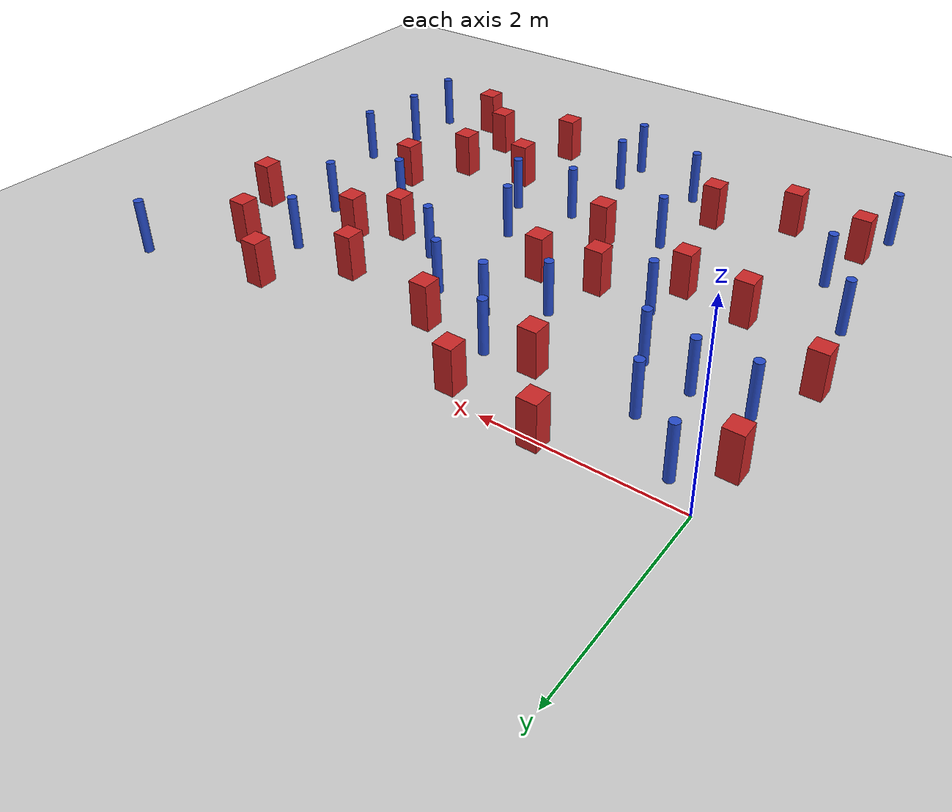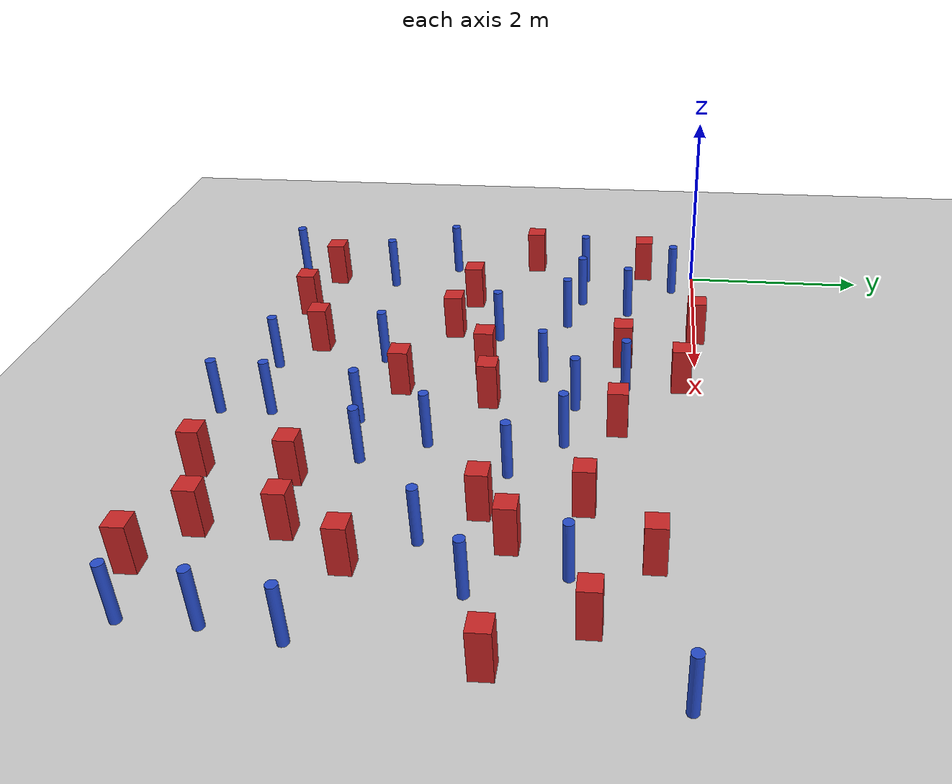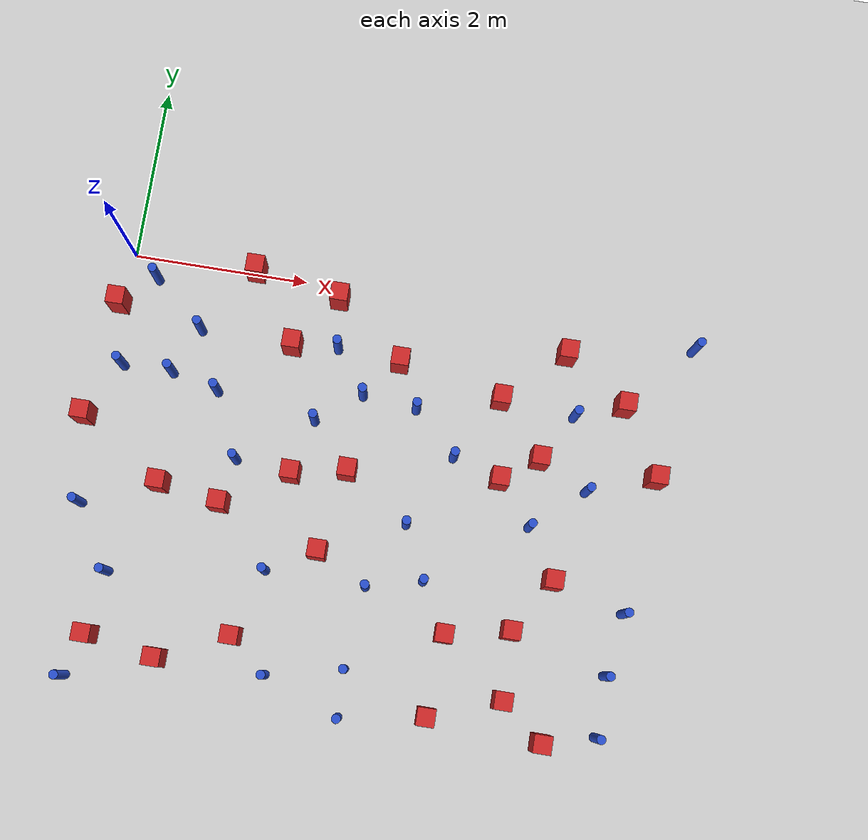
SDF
<sdf version="1.6">
 <world name="default">
  <model name="ground_plane">
   <static>1</static>
   <link name="link">
    <collision name="collision">
     <geometry><plane><normal>0 0 1</normal><size>100 100</size></plane></geometry>
     <surface><friction><ode><mu>100</mu><mu2>50</mu2></ode></friction></surface>
    </collision>
    <visual name="visual">
     <cast_shadows>0</cast_shadows>
     <geometry><plane><normal>0 0 1</normal><size>100 100</size></plane></geometry>
     <material>
      <ambient>1.0 1.0 1.0 1.0</ambient>
      <diffuse>0.8 0.8 0.8 1.0</diffuse>
      <specular>0.01 0.01 0.01 1.000000</specular>
     </material>
    </visual>
   </link>
  </model>
  <model name="NamedLocations">
   <static>true</static>
   <link name="DefaultStart"><pose>8.5 0 0 0 0 3.14</pose></link>
  </model>
  <model name="square_post_obstacle1">
   <static>true</static>
   <pose>5.06499883249 -0.397091042828 1.91545236811e-07 -7.35059704564e-06 1.12565212e-07 2.39332434364e-05</pose>
   <link name="link">
    <pose>0 0 0.25 0 -0 0</pose>
    <inertial>
     <mass>100</mass>
     <inertia>
      <ixx>0.166667</ixx>
      <ixy>0</ixy>
      <ixz>0</ixz>
      <iyy>0.166667</iyy>
      <iyz>0</iyz>
      <izz>0.166667</izz>
     </inertia>
    </inertial>
    <collision name="collision"><geometry><box><size>.2 .2 .5</size></box></geometry></collision>
    <visual name="visual">
     <geometry><box><size>.2 .2 .5</size></box></geometry>
     <material>
      <script><name>Gazebo/Red</name><uri>file://media/materials/scripts/gazebo.material</uri></script>
     </material>
    </visual>
   </link>
  </model>
  <model name="pole_obstacle6">
   <static>true</static>
   <pose>1.57511094073 -2.17022397496 7.38925637345e-09 -8.47170692799e-08 1.24976765053e-08 -1.74513093017e-07</pose>
   <link name="link">
    <pose>0 0 0.3 0 -0 0</pose>
    <inertial>
     <mass>1</mass>
     <inertia><ixx>0.145833</ixx><ixy>0</ixy><ixz>0</ixz><iyy>0.145833</iyy><iyz>0</iyz><izz>0.125</izz></inertia>
    </inertial>
    <collision name="collision">
     <geometry><cylinder><radius>0.05</radius><length>.6</length></cylinder></geometry>
    </collision>
    <visual name="visual">
     <geometry><cylinder><radius>0.05</radius><length>.6</length></cylinder></geometry>
     <material>
      <script><name>Gazebo/Blue</name><uri>file://media/materials/scripts/gazebo.material</uri></script>
     </material>
    </visual>
   </link>
  </model>
  <model name="square_post_obstacle10">
   <static>true</static>
   <pose>0.782432085454 -2.56080963063 1.91545236811e-07 -7.35059704564e-06 1.12565212e-07 2.39332434364e-05</pose>
   <link name="link">
    <pose>0 0 0.25 0 -0 0</pose>
    <inertial>
     <mass>100</mass>
     <inertia>
      <ixx>0.166667</ixx>
      <ixy>0</ixy>
      <ixz>0</ixz>
      <iyy>0.166667</iyy>
      <iyz>0</iyz>
      <izz>0.166667</izz>
     </inertia>
    </inertial>
    <collision name="collision"><geometry><box><size>.2 .2 .5</size></box></geometry></collision>
    <visual name="visual">
     <geometry><box><size>.2 .2 .5</size></box></geometry>
     <material>
      <script><name>Gazebo/Red</name><uri>file://media/materials/scripts/gazebo.material</uri></script>
     </material>
    </visual>
   </link>
  </model>
  <model name="square_post_obstacle12">
   <static>true</static>
   <pose>2.42420450844 -0.160747507718 1.91545236811e-07 -7.35059704564e-06 1.12565212e-07 2.39332434364e-05</pose>
   <link name="link">
    <pose>0 0 0.25 0 -0 0</pose>
    <inertial>
     <mass>100</mass>
     <inertia>
      <ixx>0.166667</ixx>
      <ixy>0</ixy>
      <ixz>0</ixz>
      <iyy>0.166667</iyy>
      <iyz>0</iyz>
      <izz>0.166667</izz>
     </inertia>
    </inertial>
    <collision name="collision"><geometry><box><size>.2 .2 .5</size></box></geometry></collision>
    <visual name="visual">
     <geometry><box><size>.2 .2 .5</size></box></geometry>
     <material>
      <script><name>Gazebo/Red</name><uri>file://media/materials/scripts/gazebo.material</uri></script>
     </material>
    </visual>
   </link>
  </model>
  <model name="square_post_obstacle19">
   <static>true</static>
   <pose>4.10246353803 -4.61326144353 1.91545236811e-07 -7.35059704564e-06 1.12565212e-07 2.39332434364e-05</pose>
   <link name="link">
    <pose>0 0 0.25 0 -0 0</pose>
    <inertial>
     <mass>100</mass>
     <inertia>
      <ixx>0.166667</ixx>
      <ixy>0</ixy>
      <ixz>0</ixz>
      <iyy>0.166667</iyy>
      <iyz>0</iyz>
      <izz>0.166667</izz>
     </inertia>
    </inertial>
    <collision name="collision"><geometry><box><size>.2 .2 .5</size></box></geometry></collision>
    <visual name="visual">
     <geometry><box><size>.2 .2 .5</size></box></geometry>
     <material>
      <script><name>Gazebo/Red</name><uri>file://media/materials/scripts/gazebo.material</uri></script>
     </material>
    </visual>
   </link>
  </model>
  <model name="pole_obstacle14">
   <static>true</static>
   <pose>0.135642803884 -4.80305196659 7.38925637345e-09 -8.471706928e-08 1.24976765036e-08 -1.74513093019e-07</pose>
   <link name="link">
    <pose>0 0 0.3 0 -0 0</pose>
    <inertial>
     <mass>1</mass>
     <inertia><ixx>0.145833</ixx><ixy>0</ixy><ixz>0</ixz><iyy>0.145833</iyy><iyz>0</iyz><izz>0.125</izz></inertia>
    </inertial>
    <collision name="collision">
     <geometry><cylinder><radius>0.05</radius><length>.6</length></cylinder></geometry>
    </collision>
    <visual name="visual">
     <geometry><cylinder><radius>0.05</radius><length>.6</length></cylinder></geometry>
     <material>
      <script><name>Gazebo/Blue</name><uri>file://media/materials/scripts/gazebo.material</uri></script>
     </material>
    </visual>
   </link>
  </model>
  <model name="square_post_obstacle25">
   <static>true</static>
   <pose>2.83110166358 -2.10136878462 1.91545236811e-07 -7.35059704564e-06 1.12565212e-07 2.39332434364e-05</pose>
   <link name="link">
    <pose>0 0 0.25 0 -0 0</pose>
    <inertial>
     <mass>100</mass>
     <inertia>
      <ixx>0.166667</ixx>
      <ixy>0</ixy>
      <ixz>0</ixz>
      <iyy>0.166667</iyy>
      <iyz>0</iyz>
      <izz>0.166667</izz>
     </inertia>
    </inertial>
    <collision name="collision"><geometry><box><size>.2 .2 .5</size></box></geometry></collision>
    <visual name="visual">
     <geometry><box><size>.2 .2 .5</size></box></geometry>
     <material>
      <script><name>Gazebo/Red</name><uri>file://media/materials/scripts/gazebo.material</uri></script>
     </material>
    </visual>
   </link>
  </model>
  <model name="pole_obstacle19">
   <static>true</static>
   <pose>3.15236117292 -4.25634564134 7.38925637345e-09 -8.47170692798e-08 1.24976765033e-08 -1.74513093019e-07</pose>
   <link name="link">
    <pose>0 0 0.3 0 -0 0</pose>
    <inertial>
     <mass>1</mass>
     <inertia><ixx>0.145833</ixx><ixy>0</ixy><ixz>0</ixz><iyy>0.145833</iyy><iyz>0</iyz><izz>0.125</izz></inertia>
    </inertial>
    <collision name="collision">
     <geometry><cylinder><radius>0.05</radius><length>.6</length></cylinder></geometry>
    </collision>
    <visual name="visual">
     <geometry><cylinder><radius>0.05</radius><length>.6</length></cylinder></geometry>
     <material>
      <script><name>Gazebo/Blue</name><uri>file://media/materials/scripts/gazebo.material</uri></script>
     </material>
    </visual>
   </link>
  </model>
  <model name="pole_obstacle26">
   <static>true</static>
   <pose>3.23451376099 -3.33873921395 7.38925637345e-09 -8.47170692798e-08 1.24976764939e-08 -1.74513093025e-07</pose>
   <link name="link">
    <pose>0 0 0.3 0 -0 0</pose>
    <inertial>
     <mass>1</mass>
     <inertia><ixx>0.145833</ixx><ixy>0</ixy><ixz>0</ixz><iyy>0.145833</iyy><iyz>0</iyz><izz>0.125</izz></inertia>
    </inertial>
    <collision name="collision">
     <geometry><cylinder><radius>0.05</radius><length>.6</length></cylinder></geometry>
    </collision>
    <visual name="visual">
     <geometry><cylinder><radius>0.05</radius><length>.6</length></cylinder></geometry>
     <material>
      <script><name>Gazebo/Blue</name><uri>file://media/materials/scripts/gazebo.material</uri></script>
     </material>
    </visual>
   </link>
  </model>
  <model name="pole_obstacle30">
   <static>true</static>
   <pose>0.388549299928 -3.6211798967 7.38925637345e-09 -8.471706928e-08 1.24976765084e-08 -1.74513093017e-07</pose>
   <link name="link">
    <pose>0 0 0.3 0 -0 0</pose>
    <inertial>
     <mass>1</mass>
     <inertia><ixx>0.145833</ixx><ixy>0</ixy><ixz>0</ixz><iyy>0.145833</iyy><iyz>0</iyz><izz>0.125</izz></inertia>
    </inertial>
    <collision name="collision">
     <geometry><cylinder><radius>0.05</radius><length>.6</length></cylinder></geometry>
    </collision>
    <visual name="visual">
     <geometry><cylinder><radius>0.05</radius><length>.6</length></cylinder></geometry>
     <material>
      <script><name>Gazebo/Blue</name><uri>file://media/materials/scripts/gazebo.material</uri></script>
     </material>
    </visual>
   </link>
  </model>
  <model name="pole_obstacle35">
   <static>true</static>
   <pose>5.24828819701 -1.08990193355 7.38925637345e-09 -8.471706928e-08 1.24976765134e-08 -1.74513093015e-07</pose>
   <link name="link">
    <pose>0 0 0.3 0 -0 0</pose>
    <inertial>
     <mass>1</mass>
     <inertia><ixx>0.145833</ixx><ixy>0</ixy><ixz>0</ixz><iyy>0.145833</iyy><iyz>0</iyz><izz>0.125</izz></inertia>
    </inertial>
    <collision name="collision">
     <geometry><cylinder><radius>0.05</radius><length>.6</length></cylinder></geometry>
    </collision>
    <visual name="visual">
     <geometry><cylinder><radius>0.05</radius><length>.6</length></cylinder></geometry>
     <material>
      <script><name>Gazebo/Blue</name><uri>file://media/materials/scripts/gazebo.material</uri></script>
     </material>
    </visual>
   </link>
  </model>
  <model name="square_post_obstacle37">
   <static>true</static>
   <pose>0.308053330248 -4.32436632156 1.91545236811e-07 -7.35059704564e-06 1.12565212e-07 2.39332434364e-05</pose>
   <link name="link">
    <pose>0 0 0.25 0 -0 0</pose>
    <inertial>
     <mass>100</mass>
     <inertia>
      <ixx>0.166667</ixx>
      <ixy>0</ixy>
      <ixz>0</ixz>
      <iyy>0.166667</iyy>
      <iyz>0</iyz>
      <izz>0.166667</izz>
     </inertia>
    </inertial>
    <collision name="collision"><geometry><box><size>.2 .2 .5</size></box></geometry></collision>
    <visual name="visual">
     <geometry><box><size>.2 .2 .5</size></box></geometry>
     <material>
      <script><name>Gazebo/Red</name><uri>file://media/materials/scripts/gazebo.material</uri></script>
     </material>
    </visual>
   </link>
  </model>
  <model name="pole_obstacle39">
   <static>true</static>
   <pose>0.322732929197 -0.2510917029 7.38925637345e-09 -8.47170692799e-08 1.2497676499e-08 -1.74513093021e-07</pose>
   <link name="link">
    <pose>0 0 0.3 0 -0 0</pose>
    <inertial>
     <mass>1</mass>
     <inertia><ixx>0.145833</ixx><ixy>0</ixy><ixz>0</ixz><iyy>0.145833</iyy><iyz>0</iyz><izz>0.125</izz></inertia>
    </inertial>
    <collision name="collision">
     <geometry><cylinder><radius>0.05</radius><length>.6</length></cylinder></geometry>
    </collision>
    <visual name="visual">
     <geometry><cylinder><radius>0.05</radius><length>.6</length></cylinder></geometry>
     <material>
      <script><name>Gazebo/Blue</name><uri>file://media/materials/scripts/gazebo.material</uri></script>
     </material>
    </visual>
   </link>
  </model>
  <model name="pole_obstacle45">
   <static>true</static>
   <pose>5.95099142099 -4.54348195831 7.38925637345e-09 -8.47170692796e-08 1.24976764786e-08 -1.74513093032e-07</pose>
   <link name="link">
    <pose>0 0 0.3 0 -0 0</pose>
    <inertial>
     <mass>1</mass>
     <inertia><ixx>0.145833</ixx><ixy>0</ixy><ixz>0</ixz><iyy>0.145833</iyy><iyz>0</iyz><izz>0.125</izz></inertia>
    </inertial>
    <collision name="collision">
     <geometry><cylinder><radius>0.05</radius><length>.6</length></cylinder></geometry>
    </collision>
    <visual name="visual">
     <geometry><cylinder><radius>0.05</radius><length>.6</length></cylinder></geometry>
     <material>
      <script><name>Gazebo/Blue</name><uri>file://media/materials/scripts/gazebo.material</uri></script>
     </material>
    </visual>
   </link>
  </model>
  <model name="square_post_obstacle55">
   <static>true</static>
   <pose>5.36479762426 -4.69391803515 1.91545236811e-07 -7.35059704564e-06 1.12565212e-07 2.39332434364e-05</pose>
   <link name="link">
    <pose>0 0 0.25 0 -0 0</pose>
    <inertial>
     <mass>100</mass>
     <inertia>
      <ixx>0.166667</ixx>
      <ixy>0</ixy>
      <ixz>0</ixz>
      <iyy>0.166667</iyy>
      <iyz>0</iyz>
      <izz>0.166667</izz>
     </inertia>
    </inertial>
    <collision name="collision"><geometry><box><size>.2 .2 .5</size></box></geometry></collision>
    <visual name="visual">
     <geometry><box><size>.2 .2 .5</size></box></geometry>
     <material>
      <script><name>Gazebo/Red</name><uri>file://media/materials/scripts/gazebo.material</uri></script>
     </material>
    </visual>
   </link>
  </model>
  <model name="square_post_obstacle56">
   <static>true</static>
   <pose>3.2185535475 -0.783144345055 1.91545236811e-07 -7.35059704564e-06 1.12565212e-07 2.39332434364e-05</pose>
   <link name="link">
    <pose>0 0 0.25 0 -0 0</pose>
    <inertial>
     <mass>100</mass>
     <inertia>
      <ixx>0.166667</ixx>
      <ixy>0</ixy>
      <ixz>0</ixz>
      <iyy>0.166667</iyy>
      <iyz>0</iyz>
      <izz>0.166667</izz>
     </inertia>
    </inertial>
    <collision name="collision"><geometry><box><size>.2 .2 .5</size></box></geometry></collision>
    <visual name="visual">
     <geometry><box><size>.2 .2 .5</size></box></geometry>
     <material>
      <script><name>Gazebo/Red</name><uri>file://media/materials/scripts/gazebo.material</uri></script>
     </material>
    </visual>
   </link>
  </model>
  <model name="pole_obstacle56">
   <static>true</static>
   <pose>6.48297298913 -0.117563799914 7.38925637345e-09 -8.47170692799e-08 1.24976765077e-08 -1.74513093018e-07</pose>
   <link name="link">
    <pose>0 0 0.3 0 -0 0</pose>
    <inertial>
     <mass>1</mass>
     <inertia><ixx>0.145833</ixx><ixy>0</ixy><ixz>0</ixz><iyy>0.145833</iyy><iyz>0</iyz><izz>0.125</izz></inertia>
    </inertial>
    <collision name="collision">
     <geometry><cylinder><radius>0.05</radius><length>.6</length></cylinder></geometry>
    </collision>
    <visual name="visual">
     <geometry><cylinder><radius>0.05</radius><length>.6</length></cylinder></geometry>
     <material>
      <script><name>Gazebo/Blue</name><uri>file://media/materials/scripts/gazebo.material</uri></script>
     </material>
    </visual>
   </link>
  </model>
  <model name="pole_obstacle60">
   <static>true</static>
   <pose>2.30198096746 -4.45574456037 7.38925637345e-09 -8.47170692798e-08 1.24976765033e-08 -1.74513093019e-07</pose>
   <link name="link">
    <pose>0 0 0.3 0 -0 0</pose>
    <inertial>
     <mass>1</mass>
     <inertia><ixx>0.145833</ixx><ixy>0</ixy><ixz>0</ixz><iyy>0.145833</iyy><iyz>0</iyz><izz>0.125</izz></inertia>
    </inertial>
    <collision name="collision">
     <geometry><cylinder><radius>0.05</radius><length>.6</length></cylinder></geometry>
    </collision>
    <visual name="visual">
     <geometry><cylinder><radius>0.05</radius><length>.6</length></cylinder></geometry>
     <material>
      <script><name>Gazebo/Blue</name><uri>file://media/materials/scripts/gazebo.material</uri></script>
     </material>
    </visual>
   </link>
  </model>
  <model name="square_post_obstacle62">
   <static>true</static>
   <pose>6.23058611117 -1.64031552115 1.91545236811e-07 -7.35059704564e-06 1.12565212e-07 2.39332434364e-05</pose>
   <link name="link">
    <pose>0 0 0.25 0 -0 0</pose>
    <inertial>
     <mass>100</mass>
     <inertia>
      <ixx>0.166667</ixx>
      <ixy>0</ixy>
      <ixz>0</ixz>
      <iyy>0.166667</iyy>
      <iyz>0</iyz>
      <izz>0.166667</izz>
     </inertia>
    </inertial>
    <collision name="collision"><geometry><box><size>.2 .2 .5</size></box></geometry></collision>
    <visual name="visual">
     <geometry><box><size>.2 .2 .5</size></box></geometry>
     <material>
      <script><name>Gazebo/Red</name><uri>file://media/materials/scripts/gazebo.material</uri></script>
     </material>
    </visual>
   </link>
  </model>
  <model name="square_post_obstacle63">
   <static>true</static>
   <pose>1.43129479547 0.0119407371674 1.91545236811e-07 -7.35059704564e-06 1.12565212e-07 2.39332434364e-05</pose>
   <link name="link">
    <pose>0 0 0.25 0 -0 0</pose>
    <inertial>
     <mass>100</mass>
     <inertia>
      <ixx>0.166667</ixx>
      <ixy>0</ixy>
      <ixz>0</ixz>
      <iyy>0.166667</iyy>
      <iyz>0</iyz>
      <izz>0.166667</izz>
     </inertia>
    </inertial>
    <collision name="collision"><geometry><box><size>.2 .2 .5</size></box></geometry></collision>
    <visual name="visual">
     <geometry><box><size>.2 .2 .5</size></box></geometry>
     <material>
      <script><name>Gazebo/Red</name><uri>file://media/materials/scripts/gazebo.material</uri></script>
     </material>
    </visual>
   </link>
  </model>
  <model name="pole_obstacle65">
   <static>true</static>
   <pose>2.49685173949 -0.731615934364 7.38925637345e-09 -8.471706928e-08 1.24976765177e-08 -1.74513093012e-07</pose>
   <link name="link">
    <pose>0 0 0.3 0 -0 0</pose>
    <inertial>
     <mass>1</mass>
     <inertia><ixx>0.145833</ixx><ixy>0</ixy><ixz>0</ixz><iyy>0.145833</iyy><iyz>0</iyz><izz>0.125</izz></inertia>
    </inertial>
    <collision name="collision">
     <geometry><cylinder><radius>0.05</radius><length>.6</length></cylinder></geometry>
    </collision>
    <visual name="visual">
     <geometry><cylinder><radius>0.05</radius><length>.6</length></cylinder></geometry>
     <material>
      <script><name>Gazebo/Blue</name><uri>file://media/materials/scripts/gazebo.material</uri></script>
     </material>
    </visual>
   </link>
  </model>
  <model name="pole_obstacle68">
   <static>true</static>
   <pose>5.96467774368 -3.87970843119 7.38925637345e-09 -8.47170692798e-08 1.24976764937e-08 -1.74513093023e-07</pose>
   <link name="link">
    <pose>0 0 0.3 0 -0 0</pose>
    <inertial>
     <mass>1</mass>
     <inertia><ixx>0.145833</ixx><ixy>0</ixy><ixz>0</ixz><iyy>0.145833</iyy><iyz>0</iyz><izz>0.125</izz></inertia>
    </inertial>
    <collision name="collision">
     <geometry><cylinder><radius>0.05</radius><length>.6</length></cylinder></geometry>
    </collision>
    <visual name="visual">
     <geometry><cylinder><radius>0.05</radius><length>.6</length></cylinder></geometry>
     <material>
      <script><name>Gazebo/Blue</name><uri>file://media/materials/scripts/gazebo.material</uri></script>
     </material>
    </visual>
   </link>
  </model>
  <model name="square_post_obstacle74">
   <static>true</static>
   <pose>4.89238275033 -4.31501567506 1.91545236811e-07 -7.35059704564e-06 1.12565212e-07 2.39332434364e-05</pose>
   <link name="link">
    <pose>0 0 0.25 0 -0 0</pose>
    <inertial>
     <mass>100</mass>
     <inertia>
      <ixx>0.166667</ixx>
      <ixy>0</ixy>
      <ixz>0</ixz>
      <iyy>0.166667</iyy>
      <iyz>0</iyz>
      <izz>0.166667</izz>
     </inertia>
    </inertial>
    <collision name="collision"><geometry><box><size>.2 .2 .5</size></box></geometry></collision>
    <visual name="visual">
     <geometry><box><size>.2 .2 .5</size></box></geometry>
     <material>
      <script><name>Gazebo/Red</name><uri>file://media/materials/scripts/gazebo.material</uri></script>
     </material>
    </visual>
   </link>
  </model>
  <model name="pole_obstacle72">
   <static>true</static>
   <pose>-0.0511479005586 -2.91883224678 7.38925637345e-09 -8.47170692793e-08 1.24976764354e-08 -1.74513093044e-07</pose>
   <link name="link">
    <pose>0 0 0.3 0 -0 0</pose>
    <inertial>
     <mass>1</mass>
     <inertia><ixx>0.145833</ixx><ixy>0</ixy><ixz>0</ixz><iyy>0.145833</iyy><iyz>0</iyz><izz>0.125</izz></inertia>
    </inertial>
    <collision name="collision">
     <geometry><cylinder><radius>0.05</radius><length>.6</length></cylinder></geometry>
    </collision>
    <visual name="visual">
     <geometry><cylinder><radius>0.05</radius><length>.6</length></cylinder></geometry>
     <material>
      <script><name>Gazebo/Blue</name><uri>file://media/materials/scripts/gazebo.material</uri></script>
     </material>
    </visual>
   </link>
  </model>
  <model name="square_post_obstacle79">
   <static>true</static>
   <pose>4.87877708315 -3.56018479804 1.91545236811e-07 -7.35059704564e-06 1.12565212e-07 2.39332434364e-05</pose>
   <link name="link">
    <pose>0 0 0.25 0 -0 0</pose>
    <inertial>
     <mass>100</mass>
     <inertia>
      <ixx>0.166667</ixx>
      <ixy>0</ixy>
      <ixz>0</ixz>
      <iyy>0.166667</iyy>
      <iyz>0</iyz>
      <izz>0.166667</izz>
     </inertia>
    </inertial>
    <collision name="collision"><geometry><box><size>.2 .2 .5</size></box></geometry></collision>
    <visual name="visual">
     <geometry><box><size>.2 .2 .5</size></box></geometry>
     <material>
      <script><name>Gazebo/Red</name><uri>file://media/materials/scripts/gazebo.material</uri></script>
     </material>
    </visual>
   </link>
  </model>
  <model name="pole_obstacle81">
   <static>true</static>
   <pose>3.57175657947 -2.58729782271 7.38925637345e-09 -8.47170692798e-08 1.24976764939e-08 -1.74513093025e-07</pose>
   <link name="link">
    <pose>0 0 0.3 0 -0 0</pose>
    <inertial>
     <mass>1</mass>
     <inertia><ixx>0.145833</ixx><ixy>0</ixy><ixz>0</ixz><iyy>0.145833</iyy><iyz>0</iyz><izz>0.125</izz></inertia>
    </inertial>
    <collision name="collision">
     <geometry><cylinder><radius>0.05</radius><length>.6</length></cylinder></geometry>
    </collision>
    <visual name="visual">
     <geometry><cylinder><radius>0.05</radius><length>.6</length></cylinder></geometry>
     <material>
      <script><name>Gazebo/Blue</name><uri>file://media/materials/scripts/gazebo.material</uri></script>
     </material>
    </visual>
   </link>
  </model>
  <model name="square_post_obstacle86">
   <static>true</static>
   <pose>4.51724110307 -1.93016672603 1.91545236811e-07 -7.35059704564e-06 1.12565212e-07 2.39332434364e-05</pose>
   <link name="link">
    <pose>0 0 0.25 0 -0 0</pose>
    <inertial>
     <mass>100</mass>
     <inertia>
      <ixx>0.166667</ixx>
      <ixy>0</ixy>
      <ixz>0</ixz>
      <iyy>0.166667</iyy>
      <iyz>0</iyz>
      <izz>0.166667</izz>
     </inertia>
    </inertial>
    <collision name="collision"><geometry><box><size>.2 .2 .5</size></box></geometry></collision>
    <visual name="visual">
     <geometry><box><size>.2 .2 .5</size></box></geometry>
     <material>
      <script><name>Gazebo/Red</name><uri>file://media/materials/scripts/gazebo.material</uri></script>
     </material>
    </visual>
   </link>
  </model>
  <model name="pole_obstacle98">
   <static>true</static>
   <pose>3.16553861963 -4.77803323919 7.38925637345e-09 -8.47170692798e-08 1.24976765033e-08 -1.74513093019e-07</pose>
   <link name="link">
    <pose>0 0 0.3 0 -0 0</pose>
    <inertial>
     <mass>1</mass>
     <inertia><ixx>0.145833</ixx><ixy>0</ixy><ixz>0</ixz><iyy>0.145833</iyy><iyz>0</iyz><izz>0.125</izz></inertia>
    </inertial>
    <collision name="collision">
     <geometry><cylinder><radius>0.05</radius><length>.6</length></cylinder></geometry>
    </collision>
    <visual name="visual">
     <geometry><cylinder><radius>0.05</radius><length>.6</length></cylinder></geometry>
     <material>
      <script><name>Gazebo/Blue</name><uri>file://media/materials/scripts/gazebo.material</uri></script>
     </material>
    </visual>
   </link>
  </model>
  <model name="pole_obstacle108">
   <static>true</static>
   <pose>2.3711609536 -1.59447381703 7.38925637345e-09 -8.471706928e-08 1.24976765152e-08 -1.74513093012e-07</pose>
   <link name="link">
    <pose>0 0 0.3 0 -0 0</pose>
    <inertial>
     <mass>1</mass>
     <inertia><ixx>0.145833</ixx><ixy>0</ixy><ixz>0</ixz><iyy>0.145833</iyy><iyz>0</iyz><izz>0.125</izz></inertia>
    </inertial>
    <collision name="collision">
     <geometry><cylinder><radius>0.05</radius><length>.6</length></cylinder></geometry>
    </collision>
    <visual name="visual">
     <geometry><cylinder><radius>0.05</radius><length>.6</length></cylinder></geometry>
     <material>
      <script><name>Gazebo/Blue</name><uri>file://media/materials/scripts/gazebo.material</uri></script>
     </material>
    </visual>
   </link>
  </model>
  <model name="pole_obstacle116">
   <static>true</static>
   <pose>3.97636107521 -1.76000489311 7.38925637345e-09 -8.471706928e-08 1.24976765168e-08 -1.74513093013e-07</pose>
   <link name="link">
    <pose>0 0 0.3 0 -0 0</pose>
    <inertial>
     <mass>1</mass>
     <inertia><ixx>0.145833</ixx><ixy>0</ixy><ixz>0</ixz><iyy>0.145833</iyy><iyz>0</iyz><izz>0.125</izz></inertia>
    </inertial>
    <collision name="collision">
     <geometry><cylinder><radius>0.05</radius><length>.6</length></cylinder></geometry>
    </collision>
    <visual name="visual">
     <geometry><cylinder><radius>0.05</radius><length>.6</length></cylinder></geometry>
     <material>
      <script><name>Gazebo/Blue</name><uri>file://media/materials/scripts/gazebo.material</uri></script>
     </material>
    </visual>
   </link>
  </model>
  <model name="square_post_obstacle104">
   <static>true</static>
   <pose>2.21447360087 -2.22616509022 1.91545236811e-07 -7.35059704564e-06 1.12565212e-07 2.39332434364e-05</pose>
   <link name="link">
    <pose>0 0 0.25 0 -0 0</pose>
    <inertial>
     <mass>100</mass>
     <inertia>
      <ixx>0.166667</ixx>
      <ixy>0</ixy>
      <ixz>0</ixz>
      <iyy>0.166667</iyy>
      <iyz>0</iyz>
      <izz>0.166667</izz>
     </inertia>
    </inertial>
    <collision name="collision"><geometry><box><size>.2 .2 .5</size></box></geometry></collision>
    <visual name="visual">
     <geometry><box><size>.2 .2 .5</size></box></geometry>
     <material>
      <script><name>Gazebo/Red</name><uri>file://media/materials/scripts/gazebo.material</uri></script>
     </material>
    </visual>
   </link>
  </model>
  <model name="pole_obstacle119">
   <static>true</static>
   <pose>2.86185172629 -1.22276259364 7.38925637345e-09 -8.471706928e-08 1.24976765152e-08 -1.74513093012e-07</pose>
   <link name="link">
    <pose>0 0 0.3 0 -0 0</pose>
    <inertial>
     <mass>1</mass>
     <inertia><ixx>0.145833</ixx><ixy>0</ixy><ixz>0</ixz><iyy>0.145833</iyy><iyz>0</iyz><izz>0.125</izz></inertia>
    </inertial>
    <collision name="collision">
     <geometry><cylinder><radius>0.05</radius><length>.6</length></cylinder></geometry>
    </collision>
    <visual name="visual">
     <geometry><cylinder><radius>0.05</radius><length>.6</length></cylinder></geometry>
     <material>
      <script><name>Gazebo/Blue</name><uri>file://media/materials/scripts/gazebo.material</uri></script>
     </material>
    </visual>
   </link>
  </model>
  <model name="square_post_obstacle113">
   <static>true</static>
   <pose>5.78420094644 -0.886925336059 1.91545236811e-07 -7.35059704564e-06 1.12565212e-07 2.39332434364e-05</pose>
   <link name="link">
    <pose>0 0 0.25 0 -0 0</pose>
    <inertial>
     <mass>100</mass>
     <inertia>
      <ixx>0.166667</ixx>
      <ixy>0</ixy>
      <ixz>0</ixz>
      <iyy>0.166667</iyy>
      <iyz>0</iyz>
      <izz>0.166667</izz>
     </inertia>
    </inertial>
    <collision name="collision"><geometry><box><size>.2 .2 .5</size></box></geometry></collision>
    <visual name="visual">
     <geometry><box><size>.2 .2 .5</size></box></geometry>
     <material>
      <script><name>Gazebo/Red</name><uri>file://media/materials/scripts/gazebo.material</uri></script>
     </material>
    </visual>
   </link>
  </model>
  <model name="pole_obstacle129">
   <static>true</static>
   <pose>3.48195989897 -1.28419734461 7.38925637345e-09 -8.471706928e-08 1.24976765152e-08 -1.74513093012e-07</pose>
   <link name="link">
    <pose>0 0 0.3 0 -0 0</pose>
    <inertial>
     <mass>1</mass>
     <inertia><ixx>0.145833</ixx><ixy>0</ixy><ixz>0</ixz><iyy>0.145833</iyy><iyz>0</iyz><izz>0.125</izz></inertia>
    </inertial>
    <collision name="collision">
     <geometry><cylinder><radius>0.05</radius><length>.6</length></cylinder></geometry>
    </collision>
    <visual name="visual">
     <geometry><cylinder><radius>0.05</radius><length>.6</length></cylinder></geometry>
     <material>
      <script><name>Gazebo/Blue</name><uri>file://media/materials/scripts/gazebo.material</uri></script>
     </material>
    </visual>
   </link>
  </model>
  <model name="square_post_obstacle114">
   <static>true</static>
   <pose>1.09992375477 -4.45663354167 1.91545236811e-07 -7.35059704564e-06 1.12565212e-07 2.39332434364e-05</pose>
   <link name="link">
    <pose>0 0 0.25 0 -0 0</pose>
    <inertial>
     <mass>100</mass>
     <inertia>
      <ixx>0.166667</ixx>
      <ixy>0</ixy>
      <ixz>0</ixz>
      <iyy>0.166667</iyy>
      <iyz>0</iyz>
      <izz>0.166667</izz>
     </inertia>
    </inertial>
    <collision name="collision"><geometry><box><size>.2 .2 .5</size></box></geometry></collision>
    <visual name="visual">
     <geometry><box><size>.2 .2 .5</size></box></geometry>
     <material>
      <script><name>Gazebo/Red</name><uri>file://media/materials/scripts/gazebo.material</uri></script>
     </material>
    </visual>
   </link>
  </model>
  <model name="pole_obstacle134">
   <static>true</static>
   <pose>2.11047656084 -3.33673459881 7.38925637345e-09 -8.47170692798e-08 1.24976764939e-08 -1.74513093025e-07</pose>
   <link name="link">
    <pose>0 0 0.3 0 -0 0</pose>
    <inertial>
     <mass>1</mass>
     <inertia><ixx>0.145833</ixx><ixy>0</ixy><ixz>0</ixz><iyy>0.145833</iyy><iyz>0</iyz><izz>0.125</izz></inertia>
    </inertial>
    <collision name="collision">
     <geometry><cylinder><radius>0.05</radius><length>.6</length></cylinder></geometry>
    </collision>
    <visual name="visual">
     <geometry><cylinder><radius>0.05</radius><length>.6</length></cylinder></geometry>
     <material>
      <script><name>Gazebo/Blue</name><uri>file://media/materials/scripts/gazebo.material</uri></script>
     </material>
    </visual>
   </link>
  </model>
  <model name="square_post_obstacle121">
   <static>true</static>
   <pose>5.25485389836 -2.94751852864 1.91545236811e-07 -7.35059704564e-06 1.12565212e-07 2.39332434364e-05</pose>
   <link name="link">
    <pose>0 0 0.25 0 -0 0</pose>
    <inertial>
     <mass>100</mass>
     <inertia>
      <ixx>0.166667</ixx>
      <ixy>0</ixy>
      <ixz>0</ixz>
      <iyy>0.166667</iyy>
      <iyz>0</iyz>
      <izz>0.166667</izz>
     </inertia>
    </inertial>
    <collision name="collision"><geometry><box><size>.2 .2 .5</size></box></geometry></collision>
    <visual name="visual">
     <geometry><box><size>.2 .2 .5</size></box></geometry>
     <material>
      <script><name>Gazebo/Red</name><uri>file://media/materials/scripts/gazebo.material</uri></script>
     </material>
    </visual>
   </link>
  </model>
  <model name="square_post_obstacle124">
   <static>true</static>
   <pose>4.4039673547 -1.02262040919 1.91545236811e-07 -7.35059704564e-06 1.12565212e-07 2.39332434364e-05</pose>
   <link name="link">
    <pose>0 0 0.25 0 -0 0</pose>
    <inertial>
     <mass>100</mass>
     <inertia>
      <ixx>0.166667</ixx>
      <ixy>0</ixy>
      <ixz>0</ixz>
      <iyy>0.166667</iyy>
      <iyz>0</iyz>
      <izz>0.166667</izz>
     </inertia>
    </inertial>
    <collision name="collision"><geometry><box><size>.2 .2 .5</size></box></geometry></collision>
    <visual name="visual">
     <geometry><box><size>.2 .2 .5</size></box></geometry>
     <material>
      <script><name>Gazebo/Red</name><uri>file://media/materials/scripts/gazebo.material</uri></script>
     </material>
    </visual>
   </link>
  </model>
  <model name="square_post_obstacle129">
   <static>true</static>
   <pose>1.48540149124 -2.67816737674 1.91545236811e-07 -7.35059704564e-06 1.12565212e-07 2.39332434364e-05</pose>
   <link name="link">
    <pose>0 0 0.25 0 -0 0</pose>
    <inertial>
     <mass>100</mass>
     <inertia>
      <ixx>0.166667</ixx>
      <ixy>0</ixy>
      <ixz>0</ixz>
      <iyy>0.166667</iyy>
      <iyz>0</iyz>
      <izz>0.166667</izz>
     </inertia>
    </inertial>
    <collision name="collision"><geometry><box><size>.2 .2 .5</size></box></geometry></collision>
    <visual name="visual">
     <geometry><box><size>.2 .2 .5</size></box></geometry>
     <material>
      <script><name>Gazebo/Red</name><uri>file://media/materials/scripts/gazebo.material</uri></script>
     </material>
    </visual>
   </link>
  </model>
  <model name="square_post_obstacle131">
   <static>true</static>
   <pose>1.87978848561 -4.09494015545 1.91545236811e-07 -7.35059704564e-06 1.12565212e-07 2.39332434364e-05</pose>
   <link name="link">
    <pose>0 0 0.25 0 -0 0</pose>
    <inertial>
     <mass>100</mass>
     <inertia>
      <ixx>0.166667</ixx>
      <ixy>0</ixy>
      <ixz>0</ixz>
      <iyy>0.166667</iyy>
      <iyz>0</iyz>
      <izz>0.166667</izz>
     </inertia>
    </inertial>
    <collision name="collision"><geometry><box><size>.2 .2 .5</size></box></geometry></collision>
    <visual name="visual">
     <geometry><box><size>.2 .2 .5</size></box></geometry>
     <material>
      <script><name>Gazebo/Red</name><uri>file://media/materials/scripts/gazebo.material</uri></script>
     </material>
    </visual>
   </link>
  </model>
  <model name="square_post_obstacle133">
   <static>true</static>
   <pose>4.16444073071 -3.70911082018 1.91545236811e-07 -7.35059704564e-06 1.12565212e-07 2.39332434364e-05</pose>
   <link name="link">
    <pose>0 0 0.25 0 -0 0</pose>
    <inertial>
     <mass>100</mass>
     <inertia>
      <ixx>0.166667</ixx>
      <ixy>0</ixy>
      <ixz>0</ixz>
      <iyy>0.166667</iyy>
      <iyz>0</iyz>
      <izz>0.166667</izz>
     </inertia>
    </inertial>
    <collision name="collision"><geometry><box><size>.2 .2 .5</size></box></geometry></collision>
    <visual name="visual">
     <geometry><box><size>.2 .2 .5</size></box></geometry>
     <material>
      <script><name>Gazebo/Red</name><uri>file://media/materials/scripts/gazebo.material</uri></script>
     </material>
    </visual>
   </link>
  </model>
  <model name="pole_obstacle144">
   <static>true</static>
   <pose>0.688333049265 -1.30215526002 7.38925637345e-09 -8.47170692799e-08 1.24976765033e-08 -1.7451309302e-07</pose>
   <link name="link">
    <pose>0 0 0.3 0 -0 0</pose>
    <inertial>
     <mass>1</mass>
     <inertia><ixx>0.145833</ixx><ixy>0</ixy><ixz>0</ixz><iyy>0.145833</iyy><iyz>0</iyz><izz>0.125</izz></inertia>
    </inertial>
    <collision name="collision">
     <geometry><cylinder><radius>0.05</radius><length>.6</length></cylinder></geometry>
    </collision>
    <visual name="visual">
     <geometry><cylinder><radius>0.05</radius><length>.6</length></cylinder></geometry>
     <material>
      <script><name>Gazebo/Blue</name><uri>file://media/materials/scripts/gazebo.material</uri></script>
     </material>
    </visual>
   </link>
  </model>
  <model name="square_post_obstacle139">
   <static>true</static>
   <pose>4.92452319252 -1.63226103556 1.91545236811e-07 -7.35059704564e-06 1.12565212e-07 2.39332434364e-05</pose>
   <link name="link">
    <pose>0 0 0.25 0 -0 0</pose>
    <inertial>
     <mass>100</mass>
     <inertia>
      <ixx>0.166667</ixx>
      <ixy>0</ixy>
      <ixz>0</ixz>
      <iyy>0.166667</iyy>
      <iyz>0</iyz>
      <izz>0.166667</izz>
     </inertia>
    </inertial>
    <collision name="collision"><geometry><box><size>.2 .2 .5</size></box></geometry></collision>
    <visual name="visual">
     <geometry><box><size>.2 .2 .5</size></box></geometry>
     <material>
      <script><name>Gazebo/Red</name><uri>file://media/materials/scripts/gazebo.material</uri></script>
     </material>
    </visual>
   </link>
  </model>
  <model name="pole_obstacle170">
   <static>true</static>
   <pose>0.921980478014 -0.763669431467 7.38925637345e-09 -8.47170692799e-08 1.24976765008e-08 -1.7451309302e-07</pose>
   <link name="link">
    <pose>0 0 0.3 0 -0 0</pose>
    <inertial>
     <mass>1</mass>
     <inertia><ixx>0.145833</ixx><ixy>0</ixy><ixz>0</ixz><iyy>0.145833</iyy><iyz>0</iyz><izz>0.125</izz></inertia>
    </inertial>
    <collision name="collision">
     <geometry><cylinder><radius>0.05</radius><length>.6</length></cylinder></geometry>
    </collision>
    <visual name="visual">
     <geometry><cylinder><radius>0.05</radius><length>.6</length></cylinder></geometry>
     <material>
      <script><name>Gazebo/Blue</name><uri>file://media/materials/scripts/gazebo.material</uri></script>
     </material>
    </visual>
   </link>
  </model>
  <model name="pole_obstacle172">
   <static>true</static>
   <pose>5.49560797805 -1.91093056358 7.38925637345e-09 -8.471706928e-08 1.24976765134e-08 -1.74513093015e-07</pose>
   <link name="link">
    <pose>0 0 0.3 0 -0 0</pose>
    <inertial>
     <mass>1</mass>
     <inertia><ixx>0.145833</ixx><ixy>0</ixy><ixz>0</ixz><iyy>0.145833</iyy><iyz>0</iyz><izz>0.125</izz></inertia>
    </inertial>
    <collision name="collision">
     <geometry><cylinder><radius>0.05</radius><length>.6</length></cylinder></geometry>
    </collision>
    <visual name="visual">
     <geometry><cylinder><radius>0.05</radius><length>.6</length></cylinder></geometry>
     <material>
      <script><name>Gazebo/Blue</name><uri>file://media/materials/scripts/gazebo.material</uri></script>
     </material>
    </visual>
   </link>
  </model>
  <model name="pole_obstacle177">
   <static>true</static>
   <pose>0.118443725447 -1.30404736119 7.38925637345e-09 -8.47170692799e-08 1.24976765019e-08 -1.74513093021e-07</pose>
   <link name="link">
    <pose>0 0 0.3 0 -0 0</pose>
    <inertial>
     <mass>1</mass>
     <inertia><ixx>0.145833</ixx><ixy>0</ixy><ixz>0</ixz><iyy>0.145833</iyy><iyz>0</iyz><izz>0.125</izz></inertia>
    </inertial>
    <collision name="collision">
     <geometry><cylinder><radius>0.05</radius><length>.6</length></cylinder></geometry>
    </collision>
    <visual name="visual">
     <geometry><cylinder><radius>0.05</radius><length>.6</length></cylinder></geometry>
     <material>
      <script><name>Gazebo/Blue</name><uri>file://media/materials/scripts/gazebo.material</uri></script>
     </material>
    </visual>
   </link>
  </model>
  <model name="square_post_obstacle166">
   <static>true</static>
   <pose>2.65275322997 -3.03252458762 1.91545236811e-07 -7.35059704564e-06 1.12565212e-07 2.39332434364e-05</pose>
   <link name="link">
    <pose>0 0 0.25 0 -0 0</pose>
    <inertial>
     <mass>100</mass>
     <inertia>
      <ixx>0.166667</ixx>
      <ixy>0</ixy>
      <ixz>0</ixz>
      <iyy>0.166667</iyy>
      <iyz>0</iyz>
      <izz>0.166667</izz>
     </inertia>
    </inertial>
    <collision name="collision"><geometry><box><size>.2 .2 .5</size></box></geometry></collision>
    <visual name="visual">
     <geometry><box><size>.2 .2 .5</size></box></geometry>
     <material>
      <script><name>Gazebo/Red</name><uri>file://media/materials/scripts/gazebo.material</uri></script>
     </material>
    </visual>
   </link>
  </model>
  <model name="pole_obstacle183">
   <static>true</static>
   <pose>3.85317533201 -3.1783236281 7.38925637345e-09 -8.47170692798e-08 1.24976764939e-08 -1.74513093025e-07</pose>
   <link name="link">
    <pose>0 0 0.3 0 -0 0</pose>
    <inertial>
     <mass>1</mass>
     <inertia><ixx>0.145833</ixx><ixy>0</ixy><ixz>0</ixz><iyy>0.145833</iyy><iyz>0</iyz><izz>0.125</izz></inertia>
    </inertial>
    <collision name="collision">
     <geometry><cylinder><radius>0.05</radius><length>.6</length></cylinder></geometry>
    </collision>
    <visual name="visual">
     <geometry><cylinder><radius>0.05</radius><length>.6</length></cylinder></geometry>
     <material>
      <script><name>Gazebo/Blue</name><uri>file://media/materials/scripts/gazebo.material</uri></script>
     </material>
    </visual>
   </link>
  </model>
  <model name="square_post_obstacle172">
   <static>true</static>
   <pose>1.98321029947 -0.778497719704 1.91545236811e-07 -7.35059704564e-06 1.12565212e-07 2.39332434364e-05</pose>
   <link name="link">
    <pose>0 0 0.25 0 -0 0</pose>
    <inertial>
     <mass>100</mass>
     <inertia>
      <ixx>0.166667</ixx>
      <ixy>0</ixy>
      <ixz>0</ixz>
      <iyy>0.166667</iyy>
      <iyz>0</iyz>
      <izz>0.166667</izz>
     </inertia>
    </inertial>
    <collision name="collision"><geometry><box><size>.2 .2 .5</size></box></geometry></collision>
    <visual name="visual">
     <geometry><box><size>.2 .2 .5</size></box></geometry>
     <material>
      <script><name>Gazebo/Red</name><uri>file://media/materials/scripts/gazebo.material</uri></script>
     </material>
    </visual>
   </link>
  </model>
  <model name="square_post_obstacle178">
   <static>true</static>
   <pose>-0.0496612052044 -0.598264328847 1.91545236811e-07 -7.35059704564e-06 1.12565212e-07 2.39332434364e-05</pose>
   <link name="link">
    <pose>0 0 0.25 0 -0 0</pose>
    <inertial>
     <mass>100</mass>
     <inertia>
      <ixx>0.166667</ixx>
      <ixy>0</ixy>
      <ixz>0</ixz>
      <iyy>0.166667</iyy>
      <iyz>0</iyz>
      <izz>0.166667</izz>
     </inertia>
    </inertial>
    <collision name="collision"><geometry><box><size>.2 .2 .5</size></box></geometry></collision>
    <visual name="visual">
     <geometry><box><size>.2 .2 .5</size></box></geometry>
     <material>
      <script><name>Gazebo/Red</name><uri>file://media/materials/scripts/gazebo.material</uri></script>
     </material>
    </visual>
   </link>
  </model>
  <model name="square_post_obstacle196">
   <static>true</static>
   <pose>-0.189980651966 -1.93403557661 1.91545236811e-07 -7.35059704564e-06 1.12565212e-07 2.39332434364e-05</pose>
   <link name="link">
    <pose>0 0 0.25 0 -0 0</pose>
    <inertial>
     <mass>100</mass>
     <inertia>
      <ixx>0.166667</ixx>
      <ixy>0</ixy>
      <ixz>0</ixz>
      <iyy>0.166667</iyy>
      <iyz>0</iyz>
      <izz>0.166667</izz>
     </inertia>
    </inertial>
    <collision name="collision"><geometry><box><size>.2 .2 .5</size></box></geometry></collision>
    <visual name="visual">
     <geometry><box><size>.2 .2 .5</size></box></geometry>
     <material>
      <script><name>Gazebo/Red</name><uri>file://media/materials/scripts/gazebo.material</uri></script>
     </material>
    </visual>
   </link>
  </model>
  <model name="pole_obstacle194">
   <static>true</static>
   <pose>1.2302328671 -1.43521644864 7.38925637345e-09 -8.471706928e-08 1.24976765079e-08 -1.74513093017e-07</pose>
   <link name="link">
    <pose>0 0 0.3 0 -0 0</pose>
    <inertial>
     <mass>1</mass>
     <inertia><ixx>0.145833</ixx><ixy>0</ixy><ixz>0</ixz><iyy>0.145833</iyy><iyz>0</iyz><izz>0.125</izz></inertia>
    </inertial>
    <collision name="collision">
     <geometry><cylinder><radius>0.05</radius><length>.6</length></cylinder></geometry>
    </collision>
    <visual name="visual">
     <geometry><cylinder><radius>0.05</radius><length>.6</length></cylinder></geometry>
     <material>
      <script><name>Gazebo/Blue</name><uri>file://media/materials/scripts/gazebo.material</uri></script>
     </material>
    </visual>
   </link>
  </model>
  <model name="pole_obstacle223">
   <static>true</static>
   <pose>6.07242000957 -3.18216997922 7.38925637345e-09 -8.47170692798e-08 1.24976764937e-08 -1.74513093023e-07</pose>
   <link name="link">
    <pose>0 0 0.3 0 -0 0</pose>
    <inertial>
     <mass>1</mass>
     <inertia><ixx>0.145833</ixx><ixy>0</ixy><ixz>0</ixz><iyy>0.145833</iyy><iyz>0</iyz><izz>0.125</izz></inertia>
    </inertial>
    <collision name="collision">
     <geometry><cylinder><radius>0.05</radius><length>.6</length></cylinder></geometry>
    </collision>
    <visual name="visual">
     <geometry><cylinder><radius>0.05</radius><length>.6</length></cylinder></geometry>
     <material>
      <script><name>Gazebo/Blue</name><uri>file://media/materials/scripts/gazebo.material</uri></script>
     </material>
    </visual>
   </link>
  </model>
  <model name="pole_obstacle227">
   <static>true</static>
   <pose>4.92196000957 -2.40145997922 7.38925637345e-09 -8.47170692798e-08 1.24976764937e-08 -1.74513093023e-07</pose>
   <link name="link">
    <pose>0 0 0.3 0 -0 0</pose>
    <inertial>
     <mass>1</mass>
     <inertia><ixx>0.145833</ixx><ixy>0</ixy><ixz>0</ixz><iyy>0.145833</iyy><iyz>0</iyz><izz>0.125</izz></inertia>
    </inertial>
    <collision name="collision">
     <geometry><cylinder><radius>0.05</radius><length>.6</length></cylinder></geometry>
    </collision>
    <visual name="visual">
     <geometry><cylinder><radius>0.05</radius><length>.6</length></cylinder></geometry>
     <material>
      <script><name>Gazebo/Blue</name><uri>file://media/materials/scripts/gazebo.material</uri></script>
     </material>
    </visual>
   </link>
  </model>
 </world>
</sdf>
